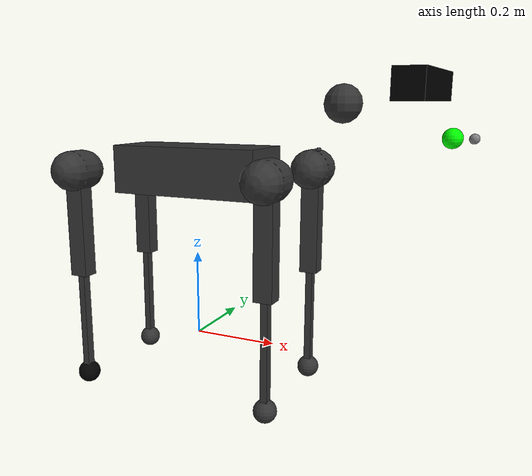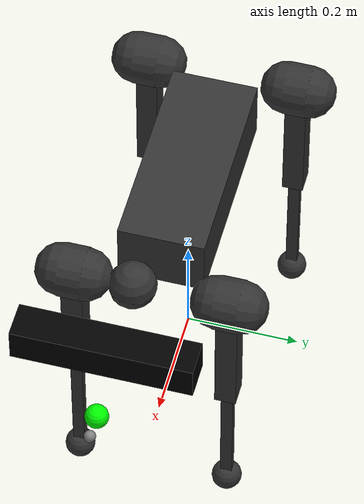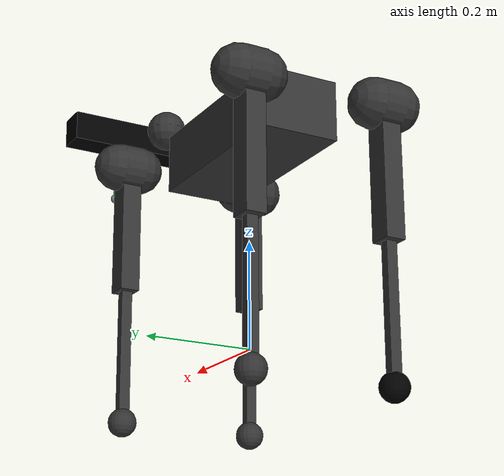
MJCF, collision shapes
<mujoco model="aliengo_description">
    <compiler angle="radian" meshdir="./assets/" autolimits="true"/>
    <option cone="elliptic" impratio="100" />
    <size njmax="500" nconmax="100" />
    <option gravity='0 0 -9.806' timestep='0.002'/>

    <default>
        <geom contype="1" conaffinity="1" friction="0.8 0.02 0.01" rgba="0.5 0.6 0.7 1" margin="0.001" group="0"/>

        <light castshadow="false" diffuse="1 1 1"/>
        <camera fovy="60"/>
        <joint damping="3" armature="0.01" frictionloss="0.2" />

        <default class="follower/visual">
            <geom type="mesh" contype="0" conaffinity="0" group="2"/>
        </default>
        <default class="follower/collision">
            <geom group="3" rgba="0.2 0.2 0.2 0.5"/>
        </default>

        <default class="follower/hip">
            <motor ctrlrange="-44.4 44.4"/>
        </default>
        <default class="follower/thigh">
            <motor ctrlrange="-35.278 35.278"/>
        </default>
        <default class="follower/calf">
            <motor ctrlrange="-35.278 35.278"/>
        </default>

    </default>
    <!-- No rename the assests these are the mesh files-->
    <asset>
        <mesh name="follower/trunk" file="trunk.stl" />
        <mesh name="follower/hip" file="hip.stl" />
        <mesh name="follower/thigh_mirror" file="thigh_mirror.stl" />
        <mesh name="follower/calf" file="calf.stl" />
        <mesh name="follower/thigh" file="thigh.stl" />
        <mesh name="follower/base_arm_link" file="base_arm_link.stl" />
        <mesh name="follower/arm_link_1" file="arm_link_1.stl" />
        <mesh name="follower/arm_link_2" file="arm_link_2.stl" />
        <mesh name="follower/arm_link_3" file="arm_link_3.stl" />

    </asset>

    <!-- pos is used to set the position-->
    <worldbody>
        <light directional="true" diffuse=".8 .8 .8" pos="0 0 10" dir="0 0 -10"/>
        <camera pos="1.794 0.068 0.397" mode="trackcom" xyaxes="0.008 1.000 0.000 -0.155 0.001 0.988"/>
        <camera name="follower/track" mode="trackcom" pos="0 -1.3 1.6" xyaxes="1 0 0 0 0.707 0.707"/>

        <body name="follower/trunk" pos="0 0 0.4">
            <inertial pos="0.00846406 0.00404455 -0.000762916" quat="-3.12625e-05 0.708321 0.00247254 0.705886" mass="13.042" diaginertia="0.174706 0.161175 0.033357" />
            <freejoint/>

            <!-- trunk visual mesh and collision -->
            <geom type="mesh" class="follower/visual" rgba="0.2 0.2 0.2 1" mesh="follower/trunk"/>
            <geom type="box" class="follower/collision" size="0.18 0.075 0.056"/>

            <!-- modify this to add payload -->

            <!-- imu and camera -->
            <site name="follower/imu" pos="0 0 0"/>
            <camera name="follower/robotcam" pos="0.31 -0.005 0.00292751" quat= "0.4 0.4 -0.4 -0.4"/>

            <!-- FL leg -->
            <body name="follower/FL_hip" pos="0.2399 0.051 0">
                <inertial pos="-0.022191 0.015144 -1.5e-05" quat="-0.0135493 0.706835 0.0117635 0.707151" mass="1.993" diaginertia="0.00558695 0.00491009 0.00290132" />
                <joint name="follower/FL_hip_joint" pos="0 0 0" axis="1 0 0" limited="true" range="-1.22173 1.22173" />

                <!-- FL_hip visual mesh and collision -->
                <geom type="mesh" class="follower/visual" rgba="0.2 0.2 0.2 1" mesh="follower/hip"/>
                <geom type="capsule" class="follower/collision" size="0.046 0.0209" pos="0 0.083 0" quat="0.707107 0.707107 0 0"/>

                <body name="follower/FL_thigh" pos="0 0.083 0">
                    <inertial pos="-0.005607 -0.003877 -0.048199" quat="0.717987 -0.031246 -0.0335669 0.694544" mass="0.639" diaginertia="0.0058474 0.00571186 0.000324584" />
                    <joint name="follower/FL_thigh_joint" pos="0 0 0" axis="0 1 0" />

                    <!-- FL_thigh visual mesh and collision -->
                    <geom type="mesh" class="follower/visual" rgba="0.2 0.2 0.2 1" mesh="follower/thigh"/>
                    <geom type="box" class="follower/collision" size="0.125 0.0187 0.0215" pos="0 0 -0.125" quat="0.707107 0 0.707107 0"/>

                    <body name="follower/FL_calf" pos="0 0 -0.25">
                        <inertial pos="0.00215606 4.88427e-05 -0.166671" quat="0.707462 0.00517582 0.00535172 0.706712" mass="0.267" diaginertia="0.00690975 0.00689712 5.4885e-05" />
                        <joint name="follower/FL_calf_joint" pos="0 0 0" axis="0 1 0" limited="true" range="-2.77507 -0.645772" />

                        <!-- FL_calf visual mesh and collision -->
                        <geom type="mesh" class="follower/visual" rgba="0 0 0 1" mesh="follower/calf" />
                        <geom type="box" class="follower/collision" size="0.125 0.0104 0.008" pos="0 0 -0.125" quat="0.707107 0 0.707107 0"/>

                        <!-- FL_foot only collision -->
                        <geom name="FL2" class="follower/collision" size="0.0265" pos="0 0 -0.25" />
                    </body>
                </body>
            </body>

            <!-- FR leg -->
            <body name="follower/FR_hip" pos="0.2399 -0.051 0">
                <inertial pos="-0.022191 -0.015144 -1.5e-05" quat="0.0135493 0.706835 -0.0117635 0.707151" mass="1.993" diaginertia="0.00558695 0.00491009 0.00290132" />
                <joint name="follower/FR_hip_joint" pos="0 0 0" axis="1 0 0" limited="true" range="-1.22173 1.22173" />

                <!-- FR_hip visual mesh and collision -->
                <geom type="mesh" mesh="follower/hip" class="follower/visual" quat="0 1 0 0" rgba="0.2 0.2 0.2 1"/>
                <geom type="capsule" class="follower/collision" size="0.046 0.0209" pos="0 -0.083 0" quat="0.707107 0.707107 0 0"/>

                <body name="follower/FR_thigh" pos="0 -0.083 0">
                    <inertial pos="-0.005607 0.003877 -0.048199" quat="0.694544 -0.0335669 -0.031246 0.717987" mass="0.639" diaginertia="0.0058474 0.00571186 0.000324584" />
                    <joint name="follower/FR_thigh_joint" pos="0 0 0" axis="0 1 0" />

                    <!-- FR_thigh visual mesh and collision -->
                    <geom type="mesh" mesh="follower/thigh_mirror" class="follower/visual" rgba="0.2 0.2 0.2 1" />
                    <geom type="box" class="follower/collision" size="0.125 0.0187 0.0215" pos="0 0 -0.125" quat="0.707107 0 0.707107 0"/>

                    <body name="follower/FR_calf" pos="0 0 -0.25">
                        <inertial pos="0.00215606 4.88427e-05 -0.166671" quat="0.707462 0.00517582 0.00535172 0.706712" mass="0.267" diaginertia="0.00690975 0.00689712 5.4885e-05" />
                        <joint name="follower/FR_calf_joint" pos="0 0 0" axis="0 1 0" limited="true" range="-2.77507 -0.645772" />

                        <!-- FR_calf visual mesh and collision -->
                        <geom type="mesh" mesh="follower/calf" class="follower/visual" rgba="0 0 0 1"/>
                        <geom type="box" class="follower/collision" size="0.125 0.0104 0.008" pos="0 0 -0.125" quat="0.707107 0 0.707107 0"/>

                        <!-- FR_foot only collision -->
                        <geom name="FR2" class="follower/collision" size="0.0265" pos="0 0 -0.25"/>
                    </body>
                </body>
            </body>

            <!-- RL leg -->
            <body name="follower/RL_hip" pos="-0.2399 0.051 0">
                <inertial pos="0.022191 0.015144 -1.5e-05" quat="0.0117635 0.707151 -0.0135493 0.706835" mass="1.993" diaginertia="0.00558695 0.00491009 0.00290132" />
                <joint name="follower/RL_hip_joint" pos="0 0 0" axis="1 0 0" limited="true" range="-1.22173 1.22173" />

                <!-- RL_hip visual mesh and collision -->
                <geom type="mesh" class="follower/visual" quat="0 0 1 0" rgba="0.2 0.2 0.2 1" mesh="follower/hip"/>
                <geom type="capsule" class="follower/collision" size="0.046 0.0209" pos="0 0.083 0" quat="0.707107 0.707107 0 0"/>

                <body name="follower/RL_thigh" pos="0 0.083 0">
                    <inertial pos="-0.005607 -0.003877 -0.048199" quat="0.717987 -0.031246 -0.0335669 0.694544" mass="0.639" diaginertia="0.0058474 0.00571186 0.000324584" />
                    <joint name="follower/RL_thigh_joint" pos="0 0 0" axis="0 1 0" />

                    <!-- RL_thigh visual mesh and collision -->
                    <geom type="mesh" class="follower/visual" rgba="0.2 0.2 0.2 1" mesh="follower/thigh"/>
                    <geom type="box" class="follower/collision" size="0.125 0.0187 0.0215" pos="0 0 -0.125" quat="0.707107 0 0.707107 0"/>

                    <body name="follower/RL_calf" pos="0 0 -0.25">
                        <inertial pos="0.00215606 4.88427e-05 -0.166671" quat="0.707462 0.00517582 0.00535172 0.706712" mass="0.267" diaginertia="0.00690975 0.00689712 5.4885e-05" />
                        <joint name="follower/RL_calf_joint" pos="0 0 0" axis="0 1 0" limited="true" range="-2.77507 -0.645772" />

                        <!-- RL_calf visual mesh and collision -->
                        <geom type="mesh" class="follower/visual" rgba="0 0 0 1" mesh="follower/calf"/>
                        <geom type="box" class="follower/collision" size="0.125 0.0104 0.008" pos="0 0 -0.125" quat="0.707107 0 0.707107 0"/>

                        <!-- RL_foot only collision -->
                        <geom name="RL2" class="follower/collision" size="0.0265" pos="0 0 -0.25"/>
                    </body>
                </body>
            </body>

            <!-- RR leg -->
            <body name="follower/RR_hip" pos="-0.2399 -0.051 0">
                <inertial pos="0.022191 -0.015144 -1.5e-05" quat="-0.0117635 0.707151 0.0135493 0.706835" mass="1.993" diaginertia="0.00558695 0.00491009 0.00290132" />
                <joint name="follower/RR_hip_joint" pos="0 0 0" axis="1 0 0" limited="true" range="-1.22173 1.22173" />

                <!-- RR_hip visual mesh and collision -->
                <geom type="mesh" class="follower/visual" quat="0 0 0 -1" rgba="0.2 0.2 0.2 1" mesh="follower/hip"/>
                <geom type="capsule" class="follower/collision" size="0.046 0.0209" pos="0 -0.083 0" quat="0.707107 0.707107 0 0"/>

                <body name="follower/RR_thigh" pos="0 -0.083 0">
                    <inertial pos="-0.005607 0.003877 -0.048199" quat="0.694544 -0.0335669 -0.031246 0.717987" mass="0.639" diaginertia="0.0058474 0.00571186 0.000324584" />
                    <joint name="follower/RR_thigh_joint" pos="0 0 0" axis="0 1 0" />

                    <!-- RR_thigh visual mesh and collision -->
                    <geom type="mesh" class="follower/visual" rgba="0.2 0.2 0.2 1" mesh="follower/thigh_mirror"/>
                    <geom type="box" class="follower/collision" size="0.125 0.0187 0.0215" pos="0 0 -0.125" quat="0.707107 0 0.707107 0"/>

                    <body name="follower/RR_calf" pos="0 0 -0.25">
                        <inertial pos="0.00215606 4.88427e-05 -0.166671" quat="0.707462 0.00517582 0.00535172 0.706712" mass="0.267" diaginertia="0.00690975 0.00689712 5.4885e-05" />
                        <joint name="follower/RR_calf_joint" pos="0 0 0" axis="0 1 0" limited="true" range="-2.77507 -0.645772" />

                        <!-- RR_calf visual mesh and collision -->
                        <geom type="mesh" class="follower/visual" rgba="0 0 0 1" mesh="follower/calf"/>
                        <geom type="box" class="follower/collision" size="0.125 0.0104 0.008" pos="0 0 -0.125" quat="0.707107 0 0.707107 0"/>

                        <!-- RR_foot only collision -->
                        <geom name="RR2" class="follower/collision" size="0.0265" pos="0 0 -0.25" rgba="0 0 0 0"/>
                    </body>
                </body>
            </body>

            <!-- FOLLOWER ARM -->

            <body name="follower/arm_base" pos="0.3 0 0.056" >

                    <inertial pos="0. 0.0 0.0" quat="0 0 0 1" mass="0.02" diaginertia="0.000004622 0.000004495 0.000002079" />
                    <geom quat="-1 0 0 0" type="mesh" contype="0" conaffinity="0" group="2" rgba="0.2 0.2 0.2 1" mesh="follower/base_arm_link" />
                    <geom size="0.0046 0.00209" pos="0 0 0" quat="0.707107 0.707107 0 0" type="capsule" rgba="0.2 0.2 0.2 0" />

                    <body name="follower/arm_link_0" pos="0 0 0.06" quat="0 0 0 1">
                        <inertial pos="0. 0 0." quat="0 0 0 1" mass="0.5" diaginertia="0.000004622 0.000004495 0.000002079" />
                        <joint name="follower/arm_link_1_joint" pos="0. 0 0." axis="0 0 1" limited="false" range="-3 3"  stiffness="10"
                        damping="1" />
                        <geom quat="0 0 0 1" type="mesh" contype="0" conaffinity="0" group="2" rgba="0.2 0.2 0.2 1" mesh="follower/arm_link_1" />

                        <body name="follower/arm_link_1" pos="-0.05 0 0.035 " quat="1 0. 0 0">
                            <inertial pos="0.0194 0.0 -0.125" quat="0 0 0 1" mass="0.5" diaginertia="0.00000457 0.000004831 0.000001409" />
                            <joint name="follower/arm_link_2_joint" pos="0.01 0 0.0" axis="0 1 0" limited="true" range="-1 1" stiffness="10"
                            damping="1" />
                            <geom quat="0 0 0 1" type="mesh" contype="0" conaffinity="0" group="2" rgba="0.2 0.2 0.2 1" mesh="follower/arm_link_2" />
                            <geom size="0.04 0.0002 0.1" pos="0. 0 0" quat="0 0 0 1" type="capsule" rgba="0.2 0.2 0.2 0" />

                            <body name="follower/arm_link_2" pos="-0.18 0.0 0.185" quat="1 0. 0 0">
                                <inertial pos="0.0388 0.0 -0.25" quat="1 0 0 0" mass="0.2" diaginertia="0.000011088 0.00001072 0.000011255" />

                                <joint name="follower/arm_link_3_joint" pos="0. 0 0" axis="0 1 0" limited="false" range="-1 0.2" stiffness="10"
                                damping="1" />
                                <geom quat="0 0 0 1" name="follower/apply_force_frame" type="mesh" contype="0" conaffinity="0" group="2" rgba="0 0 0 1" mesh="follower/arm_link_3" />
                                <geom size="0.03 0.03 0.15" pos="0.02 0 -0.15" quat="0 0 1 1" type="box" rgba="0 0 0 0" />

                                <site name="follower/eef_follower" pos="-0.08 0 -0.25" size="0.01" quat="-1 0 0 0"/>

                                <body name="eef" pos="-0.04 0 -0.25" quat="0 1 0.35 0" >
                                    <inertial pos="0 0 0" quat="0 0 0 1" mass="3" diaginertia="0.00001 0.00001 0.00001"/>
                                    <joint name="eef_joint"  damping="0.1"/>
                                    <geom name="eef_geom" type="sphere" size="0.02" rgba="0 1 0 1" contype="0" conaffinity="0"/>
                                    <site name="follower/eef_contact" pos="0 0 0" size="0.01" rgba="1 0 0 0"/>
                                </body>
                            </body>
                        </body>
                    </body>
            </body>
        </body>

        <!-- add a box mounting point -->

    </worldbody>
    <actuator>
        <motor name="follower/FR_hip"   class="follower/hip"    gear="1" joint="follower/FR_hip_joint"/>
        <motor name="follower/FR_thigh" class="follower/thigh"  gear="1" joint="follower/FR_thigh_joint"/>
        <motor name="follower/FR_calf"  class="follower/calf"   gear="1" joint="follower/FR_calf_joint"/>
        <motor name="follower/FL_hip"   class="follower/hip"    gear="1" joint="follower/FL_hip_joint"/>
        <motor name="follower/FL_thigh" class="follower/thigh"  gear="1" joint="follower/FL_thigh_joint"/>
        <motor name="follower/FL_calf"  class="follower/calf"   gear="1" joint="follower/FL_calf_joint"/>
        <motor name="follower/RR_hip"   class="follower/hip"    gear="1" joint="follower/RR_hip_joint"/>
        <motor name="follower/RR_thigh" class="follower/thigh"  gear="1" joint="follower/RR_thigh_joint"/>
        <motor name="follower/RR_calf"  class="follower/calf"   gear="1" joint="follower/RR_calf_joint" />
        <motor name="follower/RL_hip"   class="follower/hip"    gear="1" joint="follower/RL_hip_joint"/>
        <motor name="follower/RL_thigh" class="follower/thigh"  gear="1" joint="follower/RL_thigh_joint"/>
        <motor name="follower/RL_calf"  class="follower/calf"   gear="1" joint="follower/RL_calf_joint"/>
    </actuator>

    <sensor>

        <jointpos name="follower/arm_link_1_joint_pos" joint="follower/arm_link_1_joint"/>
        <jointpos name="follower/arm_link_2_joint_pos" joint="follower/arm_link_2_joint"/>
        <jointpos name="follower/arm_link_3_joint_pos" joint="follower/arm_link_3_joint"/>

    </sensor>

    <!--this defines the initial position of the robot-->
    <keyframe>
        <key name="home" qpos="0. 0 0.35  1 0 0 0
        0 0.9 -1.8 0 0.9 -1.8 0 0.9 -1.8 0 0.9 -1.8 0 0 0. 0.4

                             "
        ctrl="0 0.9 -1.8 0 0.9 -1.8 0 0.9 -1.8 0 0.9 -1.8
              "/>
    </keyframe>
</mujoco>
